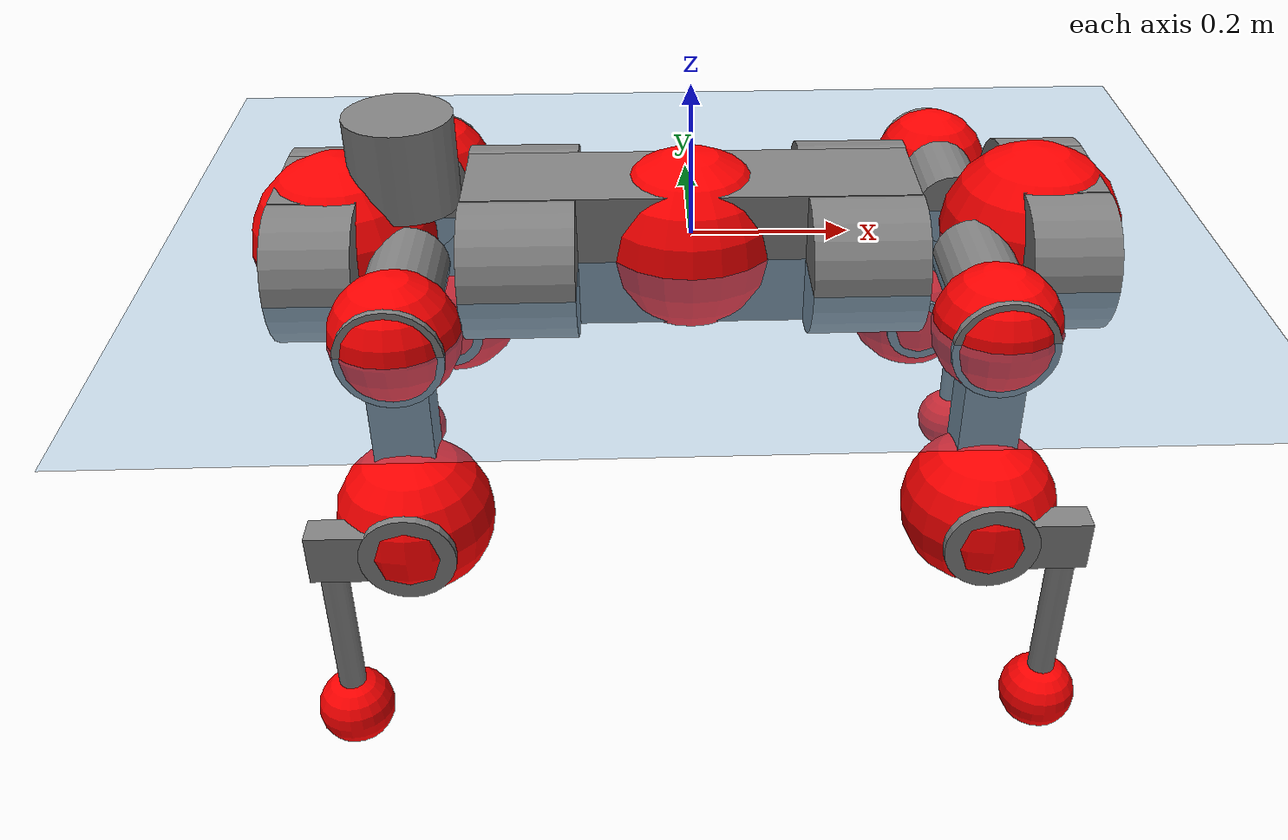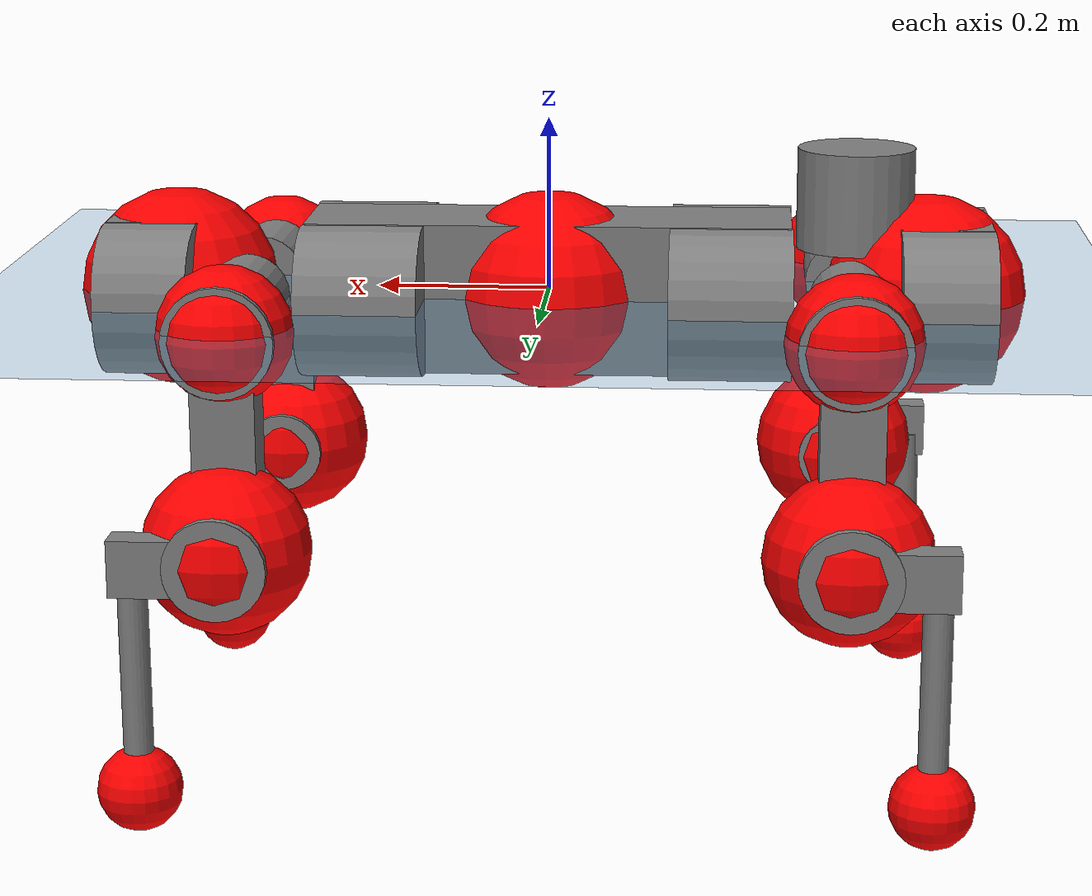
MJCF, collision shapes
<mujoco model="anymal_c">
  <compiler angle="radian" assetdir="assets" balanceinertia="true" inertiafromgeom="false"/>

  <option timestep="0.005" density="1.2" viscosity="2e-05"/>

  <size nkey="1"/>

  <visual>
    <quality shadowsize="8192"/>
    <map shadowclip="0.5"/>
  </visual>

  <default>
    <default class="/">
      <material specular="0" shininess="0.25"/>
      <geom contype="0" conaffinity="0" group="1" solref="-1000 -80"/>
      <site size="0.01 0.005 0.005" group="5"/>
      <general forcelimited="true" forcerange="-80 80" biastype="affine" gainprm="80" biasprm="0 -80 -2"/>
      <default class="anymal_c">
        <joint armature="0.01" damping="0.01" frictionloss="0.1"/>
        <default class="visual">
          <geom type="mesh" group="2"/>
          <default class="visual_zflip"/>
        </default>
        <default class="collision">
          <geom type="cylinder" group="3"/>
          <default class="foot">
            <geom size="0.03 0 0" type="sphere" condim="6" priority="1" friction="0.8 0.02 0.01" solimp="0.015 1 0.03"/>
          </default>
        </default>
      </default>
      <default class="reward_collision_sphere">
        <geom group="5" rgba="1 0 0 1"/>
      </default>
    </default>
  </default>

  <asset>
    <texture type="skybox" colorspace="auto" name="//unnamed_texture_0" builtin="gradient" rgb1="0.95 0.95 0.95" rgb2="0.95 0.95 0.95" width="100" height="600"/>
    <texture type="2d" colorspace="auto" name="texplane" builtin="checker" rgb1="0.345 0.575 0.748" rgb2="0.345 0.575 0.748" markrgb="1 1 1" width="512" height="512"/>
    <texture type="2d" colorspace="linear" name="base" file="base.png"/>
    <texture type="2d" colorspace="linear" name="top_shell" file="top_shell.png"/>
    <texture type="2d" colorspace="linear" name="bottom_shell" file="bottom_shell.png"/>
    <texture type="2d" colorspace="linear" name="remote" file="remote.png"/>
    <texture type="2d" colorspace="linear" name="hatch" file="hatch.png"/>
    <texture type="2d" colorspace="linear" name="handle" file="handle.png"/>
    <texture type="2d" colorspace="linear" name="face" file="face.png"/>
    <texture type="2d" colorspace="linear" name="battery" file="battery.png"/>
    <texture type="2d" colorspace="linear" name="lidar_cage" file="lidar_cage.png"/>
    <texture type="2d" colorspace="linear" name="depth_camera" file="depth_camera.png"/>
    <texture type="2d" colorspace="linear" name="wide_angle_camera" file="wide_angle_camera.png"/>
    <texture type="2d" colorspace="linear" name="lidar" file="lidar.png"/>
    <texture type="2d" colorspace="linear" name="drive" file="drive.png"/>
    <texture type="2d" colorspace="linear" name="hip_l" file="hip_l.png"/>
    <texture type="2d" colorspace="linear" name="shank_l" file="shank_l.png"/>
    <texture type="2d" colorspace="linear" name="foot" file="foot.png"/>
    <texture type="2d" colorspace="linear" name="thigh" file="thigh.png"/>
    <texture type="2d" colorspace="linear" name="shank_r" file="shank_r.png"/>
    <texture type="2d" colorspace="linear" name="hip_r" file="hip_r.png"/>
    <material name="MatPlane" class="/" texture="texplane" texuniform="true" texrepeat="2 2" specular="0.9" shininess="0.5"/>
    <material name="black_plastic" class="/" rgba="0.007 0.007 0.007 1"/>
    <material name="green" class="/" rgba="0.052 0.178 0.033 1"/>
    <material name="red" class="/" rgba="0.178 0.006 0.005 1"/>
    <material name="yellow" class="/" rgba="0.178 0.119 0.006 1"/>
    <material name="lwl" class="/" rgba="0.8 0.8 0.8 1"/>
    <material name="base" class="/" texture="base"/>
    <material name="top_shell" class="/" texture="top_shell"/>
    <material name="bottom_shell" class="/" texture="bottom_shell"/>
    <material name="hip_l" class="/" texture="hip_l"/>
    <material name="thigh" class="/" texture="thigh"/>
    <material name="shank_l" class="/" texture="shank_l"/>
    <material name="foot" class="/" texture="foot"/>
    <material name="hip_r" class="/" texture="hip_r"/>
    <material name="shank" class="/" texture="shank_r"/>
    <material name="hatch" class="/" texture="hatch"/>
    <material name="remote" class="/" texture="remote"/>
    <material name="handle" class="/" texture="handle"/>
    <material name="face" class="/" texture="face"/>
    <material name="depth_camera" class="/" texture="depth_camera"/>
    <material name="wide_angle_camera" class="/" texture="wide_angle_camera"/>
    <material name="battery" class="/" texture="battery"/>
    <material name="lidar_cage" class="/" texture="lidar_cage"/>
    <material name="lidar" class="/" texture="lidar"/>
    <material name="drive" class="/" texture="drive"/>
    <mesh name="base_0" class="/" file="base_0.obj"/>
    <mesh name="base_1" class="/" file="base_1.obj"/>
    <mesh name="base_2" class="/" file="base_2.obj"/>
    <mesh name="base_3" class="/" file="base_3.obj"/>
    <mesh name="base_4" class="/" file="base_4.obj"/>
    <mesh name="base_5" class="/" file="base_5.obj"/>
    <mesh name="top_shell" class="/" file="top_shell.obj"/>
    <mesh name="bottom_shell" class="/" file="bottom_shell.obj"/>
    <mesh name="remote" class="/" file="remote.obj"/>
    <mesh name="handle" class="/" file="handle.obj"/>
    <mesh name="face" class="/" file="face.obj"/>
    <mesh name="wide_angle_camera" class="/" file="wide_angle_camera.obj"/>
    <mesh name="depth_camera" class="/" file="depth_camera.obj"/>
    <mesh name="battery" class="/" file="battery.obj"/>
    <mesh name="lidar_cage" class="/" file="lidar_cage.obj"/>
    <mesh name="lidar" class="/" file="lidar.obj"/>
    <mesh name="drive" class="/" file="drive.obj"/>
    <mesh name="hip_l" class="/" file="hip_l.obj"/>
    <mesh name="thigh" class="/" file="thigh.obj"/>
    <mesh name="shank_l" class="/" file="shank_l.obj"/>
    <mesh name="foot" class="/" file="foot.obj"/>
    <mesh name="hip_r" class="/" file="hip_r.obj"/>
    <mesh name="hatch" class="/" file="hatch.obj"/>
    <mesh name="shank_r" class="/" file="shank_r.obj"/>
  </asset>

  <worldbody>
    <geom name="floor" class="/" size="100 100 0.125" type="plane" group="0" material="MatPlane"/>
    <light name="toplight_shadow" class="/" pos="0 0 5" dir="0.0990148 0.0990148 -0.990148" type="directional" ambient="0.04 0.04 0.04" diffuse="0.55 0.55 0.55" specular="0.12 0.12 0.12"/>
    <light name="toplight_fill" class="/" pos="0 0 5" dir="0.0990148 0.0990148 -0.990148" type="directional" castshadow="false" ambient="0.04 0.04 0.04" diffuse="0.3 0.3 0.3" specular="0.08 0.08 0.08"/>
    <body name="trunk" childclass="anymal_c" pos="-0.000915858 -0.00270212 -0.00218126" quat="0.999999 0.000129099 0.0010147 -0.000458947">
      <inertial pos="0.00198712 0.000887375 0.0418936" quat="0.50095 0.491455 0.501203 0.506277" mass="17.8082" diaginertia="0.55414 0.949067 0.0945452"/>
      <joint name="//unnamed_joint_0" type="free" armature="0" damping="0" frictionloss="0"/>
      <geom name="//unnamed_geom_1" class="visual" material="green" mesh="base_0"/>
      <geom name="//unnamed_geom_2" class="visual" material="yellow" mesh="base_1"/>
      <geom name="//unnamed_geom_3" class="visual" material="red" mesh="base_2"/>
      <geom name="//unnamed_geom_4" class="visual" material="black_plastic" mesh="base_3"/>
      <geom name="//unnamed_geom_5" class="visual" material="lwl" mesh="base_4"/>
      <geom name="//unnamed_geom_6" class="visual" material="base" mesh="base_5"/>
      <geom name="trunk_1" class="collision" size="0.280453 0.0676955 0.087037" type="box"/>
      <geom name="trunk_2" class="collision" size="0.087037 0.0701131" pos="0.211521 0.0761435 0" quat="0.707107 0 0.707107 0"/>
      <geom name="trunk_3" class="collision" size="0.087037 0.0701131" pos="-0.211521 0.0761435 0" quat="0.707107 0 0.707107 0"/>
      <geom name="trunk_4" class="collision" size="0.087037 0.0701131" pos="0.211521 -0.0761435 0" quat="0.707107 0 0.707107 0"/>
      <geom name="trunk_5" class="collision" size="0.087037 0.0701131" pos="-0.211521 -0.0761435 0" quat="0.707107 0 0.707107 0"/>
      <geom name="//unnamed_geom_12" class="visual" material="top_shell" mesh="top_shell"/>
      <geom name="//unnamed_geom_13" class="visual" material="bottom_shell" mesh="bottom_shell"/>
      <geom name="//unnamed_geom_14" class="visual" material="remote" mesh="remote"/>
      <geom name="//unnamed_geom_15" class="visual" material="handle" mesh="handle"/>
      <geom name="//unnamed_geom_16" class="visual" pos="0.403106 0 0" quat="1 0 0 0" material="face" mesh="face"/>
      <geom name="trunk_6" class="collision" size="0.0531893 0.0676955 0.087037" pos="0.456594 0 0" type="box"/>
      <geom name="//unnamed_geom_18" class="collision" size="0.087037 0.0531893" pos="0.456594 0.0761435 0" quat="0.707107 0 0.707107 0"/>
      <geom name="//unnamed_geom_19" class="collision" size="0.087037 0.0531893" pos="0.456594 -0.0761435 0" quat="0.707107 0 0.707107 0"/>
      <geom name="//unnamed_geom_20" class="visual" pos="0.448954 0 -0.0235562" quat="0.965926 0 0.258819 0" material="depth_camera" mesh="depth_camera"/>
      <geom name="//unnamed_geom_21" class="visual" pos="0.498898 0 0.0125892" material="wide_angle_camera" mesh="wide_angle_camera"/>
      <geom name="//unnamed_geom_22" class="visual_zflip" pos="-0.403106 0 0" quat="0 0 0 1" material="face" mesh="face"/>
      <geom name="trunk_7" class="collision" size="0.0531893 0.0676955 0.087037" pos="-0.456594 0 0" quat="0 0 0 1" type="box"/>
      <geom name="//unnamed_geom_24" class="collision" size="0.087037 0.0531893" pos="-0.456594 -0.0761435 0" quat="0 -0.707107 0 0.707107"/>
      <geom name="//unnamed_geom_25" class="collision" size="0.087037 0.0531893" pos="-0.456594 0.0761435 0" quat="0 -0.707107 0 0.707107"/>
      <geom name="//unnamed_geom_26" class="visual" pos="-0.448954 0 -0.0235562" quat="0 -0.258819 0 0.965926" material="depth_camera" mesh="depth_camera"/>
      <geom name="//unnamed_geom_27" class="visual_zflip" pos="-0.498898 0 0.0125892" quat="0 0 0 1" material="wide_angle_camera" mesh="wide_angle_camera"/>
      <geom name="//unnamed_geom_28" class="visual" material="battery" mesh="battery"/>
      <geom name="//unnamed_geom_29" class="visual" pos="0 0.0846773 0.0254297" quat="0.683013 -0.183013 0.183013 0.683013" material="depth_camera" mesh="depth_camera"/>
      <geom name="//unnamed_geom_30" class="visual" pos="0 -0.0846773 0.0254297" quat="0.683013 0.183013 0.183013 -0.683013" material="depth_camera" mesh="depth_camera"/>
      <geom name="//unnamed_geom_31" class="visual" pos="-0.353994 0 0.0618105" quat="1 0 0 0" material="lidar_cage" mesh="lidar_cage"/>
      <geom name="trunk_8" class="collision" size="0.0676955 0.0580247" pos="-0.353994 0 0.112268"/>
      <geom name="//unnamed_geom_33" class="visual" pos="-0.353994 4.52795e-05 0.119584" quat="0.707107 0 0 -0.707107" material="lidar" mesh="lidar"/>
      <geom name="//unnamed_geom_34" class="visual" pos="0.291656 0.11304 4.25742e-09" quat="0.258819 0.965926 0 0" material="drive" mesh="drive"/>
      <geom name="//unnamed_geom_35" class="visual" pos="0.291656 -0.11304 -4.25742e-09" quat="0.258819 -0.965926 0 0" material="drive" mesh="drive"/>
      <geom name="//unnamed_geom_36" class="visual" pos="-0.291656 0.11304 -4.25742e-09" quat="0 0 0.965926 -0.258819" material="drive" mesh="drive"/>
      <geom name="//unnamed_geom_37" class="visual" pos="-0.291656 -0.11304 4.25742e-09" quat="0 0 -0.965926 -0.258819" material="drive" mesh="drive"/>
      <geom name="//unnamed_geom_38" class="visual" pos="0.112811 0 0.06139" quat="1 0 0 0" material="hatch" mesh="hatch"/>
      <geom name="//unnamed_geom_39" class="reward_collision_sphere" size="0.116049"/>
      <geom name="//unnamed_geom_40" class="reward_collision_sphere" size="0.116049" pos="0.43763 0 0"/>
      <geom name="//unnamed_geom_41" class="reward_collision_sphere" size="0.116049" pos="-0.43763 0 0"/>
      <site name="imu" pos="0.238969 0.0190092 0.033177" size="0.00967078"/>
      <camera name="track" pos="0 -2.17553 0" quat="0.707107 0.707107 0 0" mode="trackcom"/>
      <camera name="ego_camera" pos="0.43763 0 -0.0336383" quat="-0.5 -0.5 0.5 0.5"/>
      <body name="LF_HIP" pos="0.289533 0.110804 0.00259851" quat="0.258697 0.965959 -0.000289885 -8.15801e-05">
        <inertial pos="0.0547712 -0.0190371 -0.00954796" quat="-0.127784 0.708072 -0.131492 0.68192" mass="2.59144" diaginertia="0.00522788 0.00753771 0.00146477"/>
        <joint name="LF_HAA" pos="0 0 0" axis="0.999993 0.000224837 -0.00382503" range="-0.698682 0.452665" armature="0.0108661" damping="0" frictionloss="0.108077"/>
        <geom name="//unnamed_geom_42" class="visual" pos="0 0.000250444 -4.11353e-05" quat="0.258819 -0.965926 0 0" material="hip_l" mesh="hip_l"/>
        <geom name="//unnamed_geom_43" class="visual" pos="0.0582534 -0.0720162 -0.0397531" quat="0.183013 -0.683013 0.683013 0.183013" material="drive" mesh="drive"/>
        <geom name="//unnamed_geom_44" class="collision" size="0.0483539 0.0676955" pos="0.0582534 -0.0130094 -0.00580682" quat="-0.353553 -0.612372 0.612372 -0.353553"/>
        <body name="LF_THIGH" pos="0.0574699 -0.0796693 -0.0336115" quat="0.182854 -0.683246 0.682709 0.183433">
          <inertial pos="0.0309679 -0.000605811 -0.204949" quat="0.993107 -0.00494565 -0.0846239 0.0809489" mass="2.76032" diaginertia="0.0267777 0.046395 0.00172246"/>
          <joint name="LF_HFE" pos="0 0 0" axis="0.999919 -0.00210483 0.0125761" range="-3.1863 3.1883" armature="0.01091" damping="0.00329839" frictionloss="0.109692"/>
          <geom name="//unnamed_geom_45" class="visual" pos="-0.00229307 -3.61334e-06 0" quat="0.707107 0 0 -0.707107" material="thigh" mesh="thigh"/>
          <geom name="//unnamed_geom_46" class="collision" size="0.0628601 0.0386831" pos="0.0389005 0 0" quat="0.5 0.5 -0.5 -0.5"/>
          <geom name="//unnamed_geom_47" class="collision" size="0.0362654 0.0290123 0.136662" pos="0.0291753 0 -0.118839" quat="0.707107 0 0 -0.707107" type="box"/>
          <geom name="//unnamed_geom_48" class="visual" pos="0.0975429 0 -0.239673" quat="1 0 0 0" material="drive" mesh="drive"/>
          <geom name="//unnamed_geom_49" class="collision" size="0.0483539 0.0676955" pos="0.0294671 0 -0.239673" quat="0.707107 0 0.707107 0"/>
          <geom name="//unnamed_geom_50" class="reward_collision_sphere" size="0.0773662" pos="0.0243128 0 0"/>
          <body name="LF_SHANK" pos="0.0990761 -0.000667405 -0.240451" quat="0.999999 -0.000253528 0.000925604 0.000952964">
            <inertial pos="0.00811251 -0.0638586 -0.0704088" quat="0.992514 -0.119592 -0.00862543 -0.0232081" mass="0.541889" diaginertia="0.00867867 0.0145827 0.000455569"/>
            <joint name="LF_KFE" pos="0 0 0" axis="0.999982 0.0057919 0.00163373" range="-3.11998 3.09877" armature="0.00819913" damping="0.0110209" frictionloss="0.0992842"/>
            <geom name="//unnamed_geom_51" class="visual" pos="-0.000747719 -0.00398688 0" quat="0.707107 0 0 -0.707107" material="shank_l" mesh="shank_l"/>
            <geom name="LF_kfe_act" class="collision" size="0.0580247 0.0193416" pos="0.0194502 0 0" quat="0.5 0.5 -0.5 -0.5"/>
            <geom name="//unnamed_geom_53" class="collision" size="0.055606 0.0326389 0.0183745" pos="0.0194502 -0.0625453 0" quat="0.5 0.5 -0.5 -0.5" type="box"/>
            <geom name="//unnamed_geom_54" class="visual" pos="0.0126915 -0.0969536 -0.284219" quat="0.382683 0 0 -0.92388" material="foot" mesh="foot"/>
            <geom name="LF_calf" class="collision" size="0.0169239 0.136602" pos="0.0126913 -0.0956688 -0.142109" quat="0.707107 0 0 -0.707107"/>
            <geom name="LF_foot" class="foot" size="0.0342294" pos="0.0126913 -0.0956688 -0.265297" quat="0.707107 0 0 -0.707107"/>
            <geom name="//unnamed_geom_57" class="reward_collision_sphere" size="0.0967078" pos="-0.0486256 0 0"/>
            <geom name="//unnamed_geom_58" class="reward_collision_sphere" size="0.0483539" pos="0.0126913 -0.0956688 -0.265297"/>
            <site name="LF_foot" class="foot" pos="0.0126913 -0.0956688 -0.265297" quat="0.707107 0 0 -0.707107" size="0.00967078"/>
          </body>
        </body>
      </body>
      <body name="RF_HIP" pos="0.291912 -0.111843 0.000346423" quat="0.258352 -0.96605 0.00085316 -0.000659364">
        <inertial pos="0.0575213 0.0185486 -0.00673577" quat="0.132981 0.679493 0.131871 0.709377" mass="2.58614" diaginertia="0.00529273 0.00770207 0.00138055"/>
        <joint name="RF_HAA" pos="0 0 0" axis="0.999992 0.00211653 0.00324902" range="-0.436851 0.715281" armature="0.00941759" damping="0.0104136" frictionloss="0.100552"/>
        <geom name="//unnamed_geom_59" class="visual" pos="0 -0.000250442 -4.11352e-05" quat="0.258819 0.965926 0 0" material="hip_r" mesh="hip_r"/>
        <geom name="//unnamed_geom_60" class="visual" pos="0.0582534 0.0720162 -0.0397531" quat="0.183013 0.683013 0.683013 -0.183013" material="drive" mesh="drive"/>
        <geom name="//unnamed_geom_61" class="collision" size="0.0483539 0.0676955" pos="0.0582534 0.0130094 -0.00580682" quat="-0.353553 0.612372 0.612372 0.353553"/>
        <body name="RF_THIGH" pos="0.057756 0.0782409 -0.0338151" quat="0.182984 0.683218 0.682688 -0.183486">
          <inertial pos="0.027395 -0.000564481 -0.207574" quat="0.99289 -0.00306571 -0.0811516 0.0870283" mass="2.70008" diaginertia="0.0257606 0.043039 0.00166731"/>
          <joint name="RF_HFE" pos="0 0 0" axis="0.99997 0.0013098 -0.0075852" stiffness="0.00365169" range="-3.1728 3.10001" armature="0.0094808" damping="0.0127556" frictionloss="0.108263"/>
          <geom name="//unnamed_geom_62" class="visual" pos="-0.00229307 -3.61334e-06 0" quat="0.707107 0 0 -0.707107" material="thigh" mesh="thigh"/>
          <geom name="//unnamed_geom_63" class="collision" size="0.0628601 0.0386831" pos="0.0389005 0 0" quat="0.5 0.5 0.5 0.5"/>
          <geom name="//unnamed_geom_64" class="collision" size="0.0362654 0.0290123 0.136662" pos="0.0291753 0 -0.118839" quat="0.707107 0 0 0.707107" type="box"/>
          <geom name="//unnamed_geom_65" class="visual" pos="0.0975429 0 -0.239673" quat="1 0 0 0" material="drive" mesh="drive"/>
          <geom name="//unnamed_geom_66" class="collision" size="0.0483539 0.0676955" pos="0.0294671 0 -0.239673" quat="0.707107 0 0.707107 0"/>
          <geom name="//unnamed_geom_67" class="reward_collision_sphere" size="0.0773662" pos="0.0243128 0 0"/>
          <body name="RF_SHANK" pos="0.100503 1.41277e-05 -0.240029" quat="1 -0.000227324 0.000251073 -0.000100376">
            <inertial pos="0.00831523 0.0665941 -0.0687933" quat="0.993057 0.114518 0.000551947 0.0268844" mass="0.553924" diaginertia="0.00930355 0.0139731 0.00047806"/>
            <joint name="RF_KFE" pos="0 0 0" axis="0.999955 0.00686416 -0.00661673" range="-3.14231 3.15221" armature="0.00917482" damping="0.0228849" frictionloss="0.101088"/>
            <geom name="//unnamed_geom_68" class="visual" pos="-0.000747715 0.00398687 0" quat="0.707107 0 0 0.707107" material="shank" mesh="shank_r"/>
            <geom name="RF_kfe_act" class="collision" size="0.0580247 0.0193416" pos="0.0194502 0 0" quat="0.5 0.5 0.5 0.5"/>
            <geom name="//unnamed_geom_70" class="collision" size="0.055606 0.0326389 0.0183745" pos="0.0194502 0.0625453 0" quat="0.5 0.5 0.5 0.5" type="box"/>
            <geom name="//unnamed_geom_71" class="visual" pos="0.0126911 0.0969536 -0.284219" quat="0.382683 0 0 0.92388" material="foot" mesh="foot"/>
            <geom name="RF_calf" class="collision" size="0.0169239 0.136602" pos="0.0126913 0.0956688 -0.142109" quat="0.707107 0 0 0.707107"/>
            <geom name="RF_foot" class="foot" size="0.0273587" pos="0.0126913 0.0956688 -0.265297" quat="0.707107 0 0 0.707107"/>
            <geom name="//unnamed_geom_74" class="reward_collision_sphere" size="0.0967078" pos="-0.0486256 0 0"/>
            <geom name="//unnamed_geom_75" class="reward_collision_sphere" size="0.0483539" pos="0.0126913 0.0956688 -0.265297"/>
            <site name="RF_foot" class="foot" pos="0.0126913 0.0956688 -0.265297" quat="0.707107 0 0 0.707107" size="0.00967078"/>
          </body>
        </body>
      </body>
      <body name="LH_HIP" pos="-0.290694 0.113987 0.00297612" quat="-0.000105129 0.000104502 0.965927 -0.258816">
        <inertial pos="0.0560824 0.0158524 -0.00798883" quat="0.135174 0.678456 0.12818 0.710631" mass="2.5029" diaginertia="0.00504947 0.00764526 0.00135095"/>
        <joint name="LH_HAA" pos="0 0 0" axis="1 0.000945821 -0.000162059" stiffness="0.00908975" range="-0.497242 0.712248" armature="0.00985188" damping="0.0079709" frictionloss="0.107074"/>
        <geom name="//unnamed_geom_76" class="visual" pos="0 -0.000250442 -4.11352e-05" quat="-0.258819 -0.965926 0 0" material="hip_r" mesh="hip_r"/>
        <geom name="//unnamed_geom_77" class="visual" pos="0.0582534 0.0720162 -0.0397531" quat="0.183013 0.683013 0.683013 -0.183013" material="drive" mesh="drive"/>
        <geom name="//unnamed_geom_78" class="collision" size="0.0483539 0.0676955" pos="0.0582534 0.0130094 -0.00580682" quat="-0.353553 0.612372 0.612372 0.353553"/>
        <body name="LH_THIGH" pos="0.0566577 0.0816416 -0.0328651" quat="0.18298 0.68264 0.683351 -0.183175">
          <inertial pos="0.030237 -8.30908e-05 -0.206312" quat="0.992926 -0.00803851 -0.0856811 0.081807" mass="2.70362" diaginertia="0.0267168 0.0441364 0.00179703"/>
          <joint name="LH_HFE" pos="0 0 0" axis="0.999946 0.010173 0.00220339" range="-3.13494 3.14038" armature="0.00846267" damping="0.0029888" frictionloss="0.0876146"/>
          <geom name="//unnamed_geom_79" class="visual" pos="-0.00229307 -3.61334e-06 0" quat="0.707107 0 0 -0.707107" material="thigh" mesh="thigh"/>
          <geom name="//unnamed_geom_80" class="collision" size="0.0628601 0.0386831" pos="0.0389005 0 0" quat="0.5 0.5 -0.5 -0.5"/>
          <geom name="//unnamed_geom_81" class="collision" size="0.0362654 0.0290123 0.136662" pos="0.0291753 0 -0.118839" quat="0.707107 0 0 -0.707107" type="box"/>
          <geom name="//unnamed_geom_82" class="visual" pos="0.0975429 0 -0.239673" quat="1 0 0 0" material="drive" mesh="drive"/>
          <geom name="//unnamed_geom_83" class="collision" size="0.0483539 0.0676955" pos="0.0294671 0 -0.239673" quat="0.707107 0 0.707107 0"/>
          <geom name="//unnamed_geom_84" class="reward_collision_sphere" size="0.0773662" pos="0.0243128 0 0"/>
          <body name="LH_SHANK" pos="0.0994779 -0.00107007 -0.237713" quat="1 -3.43937e-05 2.59848e-07 7.59812e-05">
            <inertial pos="0.00515128 0.066371 -0.0649569" quat="0.992941 0.116005 -0.000903242 0.0247035" mass="0.536262" diaginertia="0.00882557 0.0139984 0.000478813"/>
            <joint name="LH_KFE" pos="0 0 0" axis="0.999994 -0.000944918 0.00329314" range="-3.16716 3.13837" armature="0.00861078" damping="0.00280247" frictionloss="0.0993116"/>
            <geom name="//unnamed_geom_85" class="visual" pos="-0.000747715 0.00398687 0" quat="-0.707107 0 0 -0.707107" material="shank" mesh="shank_r"/>
            <geom name="LH_kfe_act" class="collision" size="0.0580247 0.0193416" pos="0.0194502 0 0" quat="0.5 0.5 -0.5 -0.5"/>
            <geom name="//unnamed_geom_87" class="collision" size="0.055606 0.0326389 0.0183745" pos="0.0194502 0.0625453 0" quat="0.5 0.5 -0.5 -0.5" type="box"/>
            <geom name="//unnamed_geom_88" class="visual" pos="0.0126911 0.0969536 -0.284219" quat="-0.382683 0 0 -0.92388" material="foot" mesh="foot"/>
            <geom name="LH_calf" class="collision" size="0.0169239 0.136602" pos="0.0126913 0.0956688 -0.142109" quat="0.707107 0 0 -0.707107"/>
            <geom name="LH_foot" class="foot" size="0.0326299" pos="0.0126913 0.0956688 -0.265297" quat="0.707107 0 0 -0.707107"/>
            <geom name="//unnamed_geom_91" class="reward_collision_sphere" size="0.0967078" pos="-0.0486256 0 0"/>
            <geom name="//unnamed_geom_92" class="reward_collision_sphere" size="0.0483539" pos="0.0126913 0.0956688 -0.265297"/>
            <site name="LH_foot" class="foot" pos="0.0126913 0.0956688 -0.265297" quat="0.707107 0 0 -0.707107" size="0.00967078"/>
          </body>
        </body>
      </body>
      <body name="RH_HIP" pos="-0.289949 -0.113721 0.0022857" quat="0.000996258 -0.000660202 -0.966177 -0.257878">
        <inertial pos="0.054989 -0.0143705 -0.00696578" quat="-0.127328 0.71158 -0.141832 0.676258" mass="2.52024" diaginertia="0.00529528 0.00778427 0.00135057"/>
        <joint name="RH_HAA" pos="0 0 0" axis="0.999997 -0.00216316 -0.000785883" stiffness="0.00153524" range="-0.72885 0.495264" armature="0.0102303" damping="0.00918865" frictionloss="0.0877825"/>
        <geom name="//unnamed_geom_93" class="visual" pos="0 0.000250444 -4.11353e-05" quat="-0.258819 0.965926 0 0" material="hip_l" mesh="hip_l"/>
        <geom name="//unnamed_geom_94" class="visual" pos="0.0582534 -0.0720162 -0.0397531" quat="-0.183013 0.683013 -0.683013 -0.183013" material="drive" mesh="drive"/>
        <geom name="//unnamed_geom_95" class="collision" size="0.0483539 0.0676955" pos="0.0582534 -0.0130094 -0.00580682" quat="0.353553 0.612372 -0.612372 0.353553"/>
        <body name="RH_THIGH" pos="0.0565997 -0.0786515 -0.0370616" quat="-0.181985 0.683227 -0.682857 -0.183817">
          <inertial pos="0.0305608 -0.00279638 -0.207445" quat="0.992933 -0.00372943 -0.0818491 0.0858595" mass="2.6164" diaginertia="0.0248873 0.0441115 0.00168233"/>
          <joint name="RH_HFE" pos="0 0 0" axis="0.999986 -0.00520868 0.000684144" range="-3.17002 3.19973" armature="0.0109658" damping="0.00627335" frictionloss="0.0916643"/>
          <geom name="//unnamed_geom_96" class="visual" pos="-0.00229307 -3.61334e-06 0" quat="0.707107 0 0 -0.707107" material="thigh" mesh="thigh"/>
          <geom name="//unnamed_geom_97" class="collision" size="0.0628601 0.0386831" pos="0.0389005 0 0" quat="0.5 0.5 0.5 0.5"/>
          <geom name="//unnamed_geom_98" class="collision" size="0.0362654 0.0290123 0.136662" pos="0.0291753 0 -0.118839" quat="0.707107 0 0 0.707107" type="box"/>
          <geom name="//unnamed_geom_99" class="visual" pos="0.0975429 0 -0.239673" quat="1 0 0 0" material="drive" mesh="drive"/>
          <geom name="//unnamed_geom_100" class="collision" size="0.0483539 0.0676955" pos="0.0294671 0 -0.239673" quat="0.707107 0 0.707107 0"/>
          <geom name="//unnamed_geom_101" class="reward_collision_sphere" size="0.0773662" pos="0.0243128 0 0"/>
          <body name="RH_SHANK" pos="0.0974679 0.00301141 -0.240495" quat="1 5.39502e-06 5.28232e-05 1.67137e-05">
            <inertial pos="0.00542563 -0.0664911 -0.0651258" quat="0.992694 -0.115894 0.00692031 -0.0328634" mass="0.529888" diaginertia="0.00907093 0.0134896 0.000482878"/>
            <joint name="RH_KFE" pos="0 0 0" axis="0.999957 0.0021468 -0.00904134" stiffness="0.00133599" range="-3.07985 3.13628" armature="0.00838103" damping="0.00627573" frictionloss="0.102477"/>
            <geom name="//unnamed_geom_102" class="visual" pos="-0.000747719 -0.00398688 0" quat="0.707107 0 0 -0.707107" material="shank_l" mesh="shank_l"/>
            <geom name="RH_kfe_act" class="collision" size="0.0580247 0.0193416" pos="0.0194502 0 0" quat="0.5 0.5 0.5 0.5"/>
            <geom name="//unnamed_geom_104" class="collision" size="0.055606 0.0326389 0.0183745" pos="0.0194502 -0.0625453 0" quat="0.5 0.5 0.5 0.5" type="box"/>
            <geom name="//unnamed_geom_105" class="visual" pos="0.0126915 -0.0969536 -0.284219" quat="0.382683 0 0 -0.92388" material="foot" mesh="foot"/>
            <geom name="RH_calf" class="collision" size="0.0169239 0.136602" pos="0.0126913 -0.0956688 -0.142109" quat="0.707107 0 0 0.707107"/>
            <geom name="RH_foot" class="foot" size="0.0249773" pos="0.0126913 -0.0956688 -0.265297" quat="0.707107 0 0 0.707107"/>
            <geom name="//unnamed_geom_108" class="reward_collision_sphere" size="0.0967078" pos="-0.0486256 0 0"/>
            <geom name="//unnamed_geom_109" class="reward_collision_sphere" size="0.0483539" pos="0.0126913 -0.0956688 -0.265297"/>
            <site name="RH_foot" class="foot" pos="0.0126913 -0.0956688 -0.265297" quat="0.707107 0 0 0.707107" size="0.00967078"/>
          </body>
        </body>
      </body>
    </body>
  </worldbody>

  <contact>
    <pair class="/" geom1="floor" geom2="LF_foot" name="//unnamed_contact_0"/>
    <pair class="/" geom1="floor" geom2="RF_foot" name="//unnamed_contact_1"/>
    <pair class="/" geom1="floor" geom2="LH_foot" name="//unnamed_contact_2"/>
    <pair class="/" geom1="floor" geom2="RH_foot" name="//unnamed_contact_3"/>
  </contact>

  <actuator>
    <general name="LF_HAA" class="/" joint="LF_HAA" forcerange="-78.8669 78.8669" gainprm="78.2305" biasprm="0 -78.2305 -1.99956"/>
    <general name="LF_HFE" class="/" joint="LF_HFE" forcerange="-69.6883 69.6883" gainprm="78.2305" biasprm="0 -78.2305 -1.99956"/>
    <general name="LF_KFE" class="/" joint="LF_KFE" forcerange="-77.9283 77.9283" gainprm="78.2305" biasprm="0 -78.2305 -1.99956"/>
    <general name="RF_HAA" class="/" joint="RF_HAA" forcerange="-78.254 78.254" gainprm="78.2305" biasprm="0 -78.2305 -1.99956"/>
    <general name="RF_HFE" class="/" joint="RF_HFE" forcerange="-79.9111 79.9111" gainprm="78.2305" biasprm="0 -78.2305 -1.99956"/>
    <general name="RF_KFE" class="/" joint="RF_KFE" forcerange="-70.0243 70.0243" gainprm="78.2305" biasprm="0 -78.2305 -1.99956"/>
    <general name="LH_HAA" class="/" joint="LH_HAA" forcerange="-80.2325 80.2325" gainprm="78.2305" biasprm="0 -78.2305 -1.99956"/>
    <general name="LH_HFE" class="/" joint="LH_HFE" forcerange="-80.0946 80.0946" gainprm="78.2305" biasprm="0 -78.2305 -1.99956"/>
    <general name="LH_KFE" class="/" joint="LH_KFE" forcerange="-74.6896 74.6896" gainprm="78.2305" biasprm="0 -78.2305 -1.99956"/>
    <general name="RH_HAA" class="/" joint="RH_HAA" forcerange="-76.333 76.333" gainprm="78.2305" biasprm="0 -78.2305 -1.99956"/>
    <general name="RH_HFE" class="/" joint="RH_HFE" forcerange="-73.7266 73.7266" gainprm="78.2305" biasprm="0 -78.2305 -1.99956"/>
    <general name="RH_KFE" class="/" joint="RH_KFE" forcerange="-81.7006 81.7006" gainprm="78.2305" biasprm="0 -78.2305 -1.99956"/>
  </actuator>

  <sensor>
    <gyro site="imu" name="imu_angular_velocity"/>
    <velocimeter site="imu" name="imu_linear_velocity"/>
    <framelinvel objtype="site" objname="LF_foot" name="LF_foot_global_linear_velocity"/>
    <framelinvel objtype="site" objname="RF_foot" name="RF_foot_global_linear_velocity"/>
    <framelinvel objtype="site" objname="LH_foot" name="LH_foot_global_linear_velocity"/>
    <framelinvel objtype="site" objname="RH_foot" name="RH_foot_global_linear_velocity"/>
  </sensor>

  <keyframe>
    <key name="home" qpos="0 0 0.55 1 0 0 0 0 0.4 -0.8 0 -0.4 0.8 0 -0.4 0.8 0 0.4 -0.8"/>
  </keyframe>
</mujoco>
